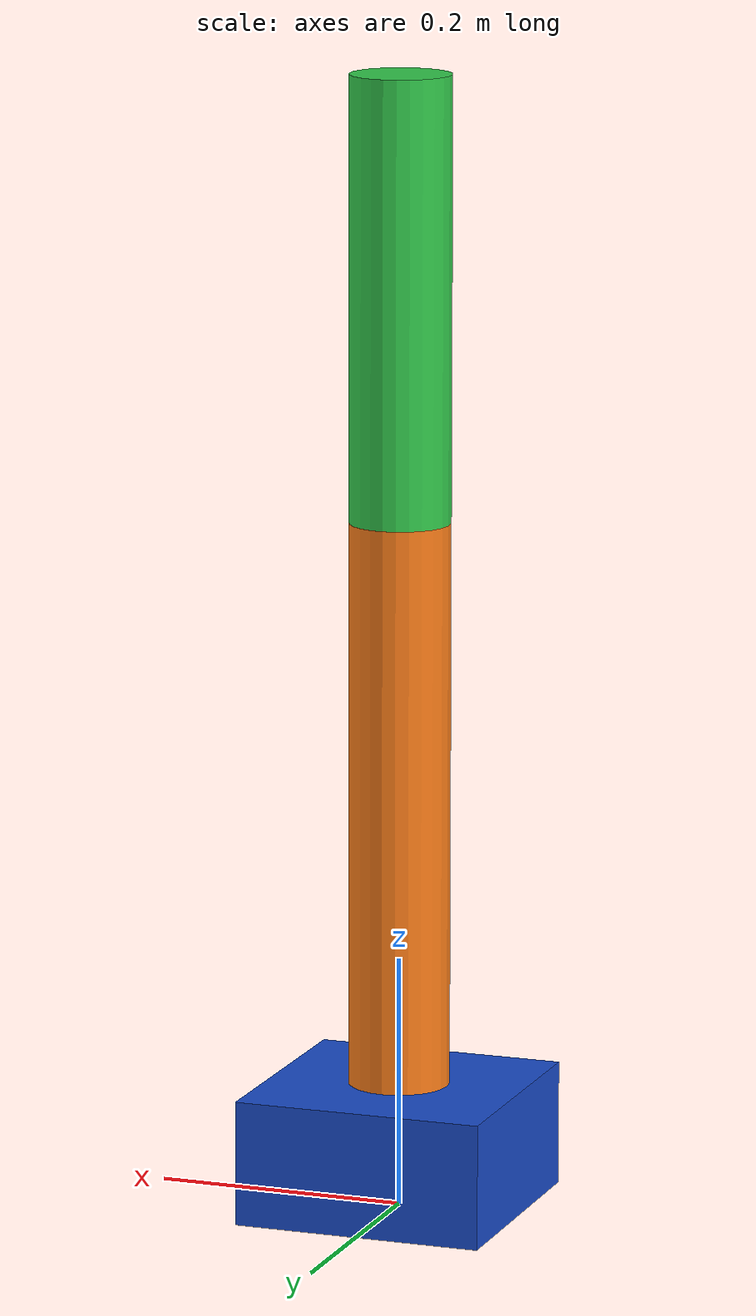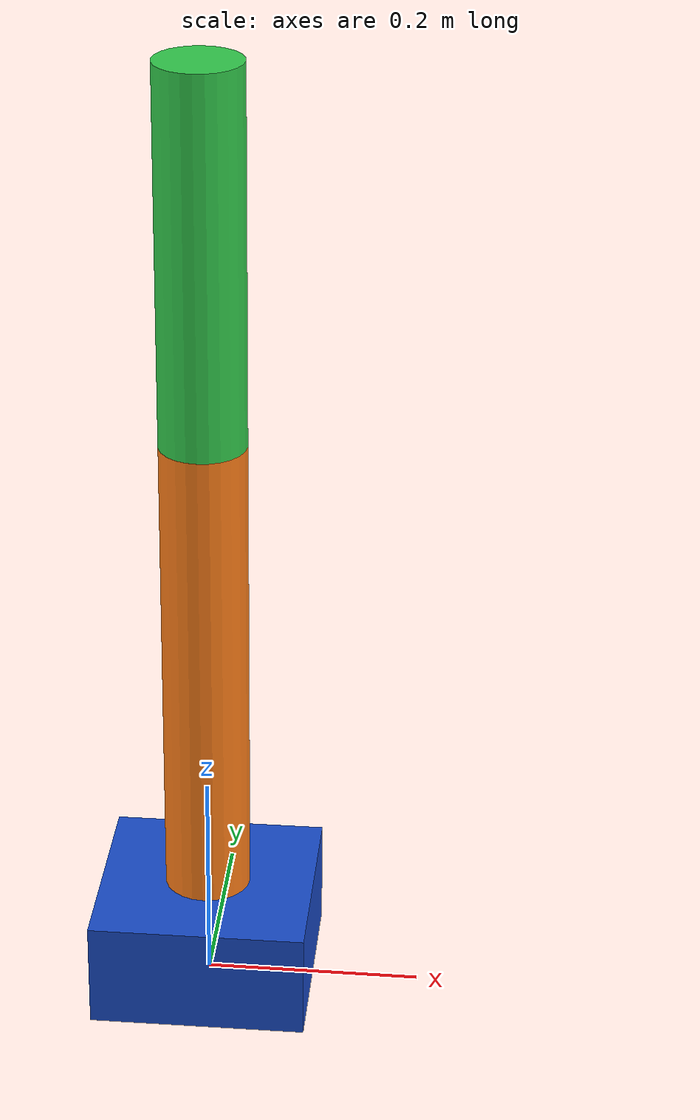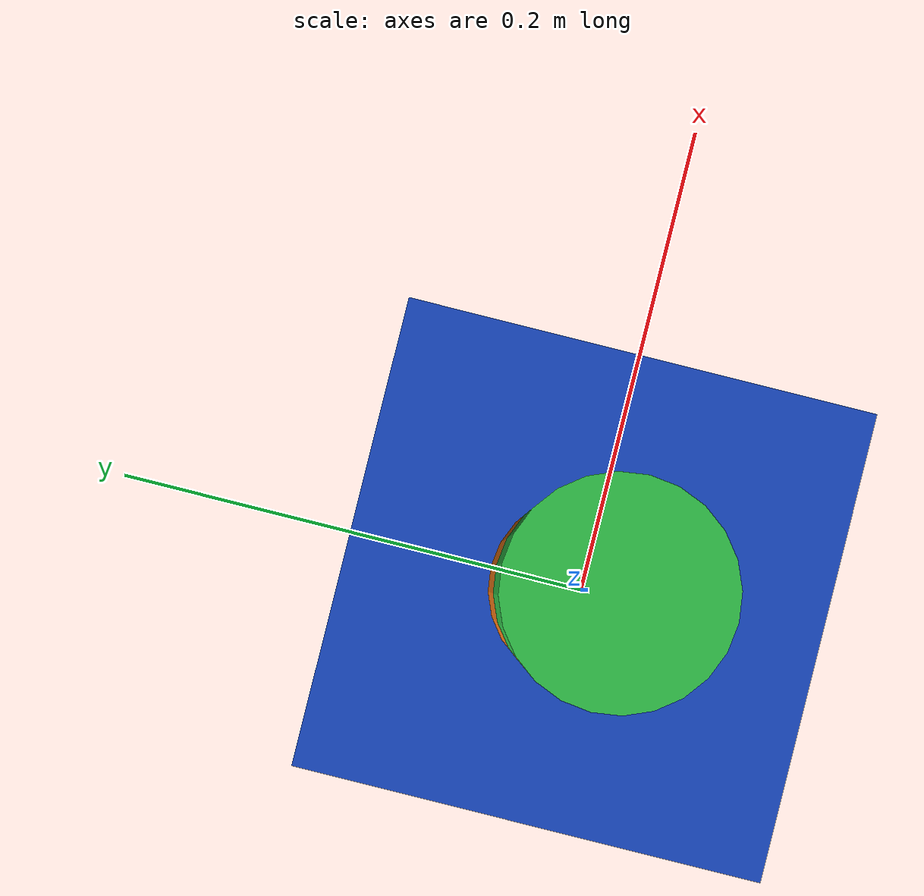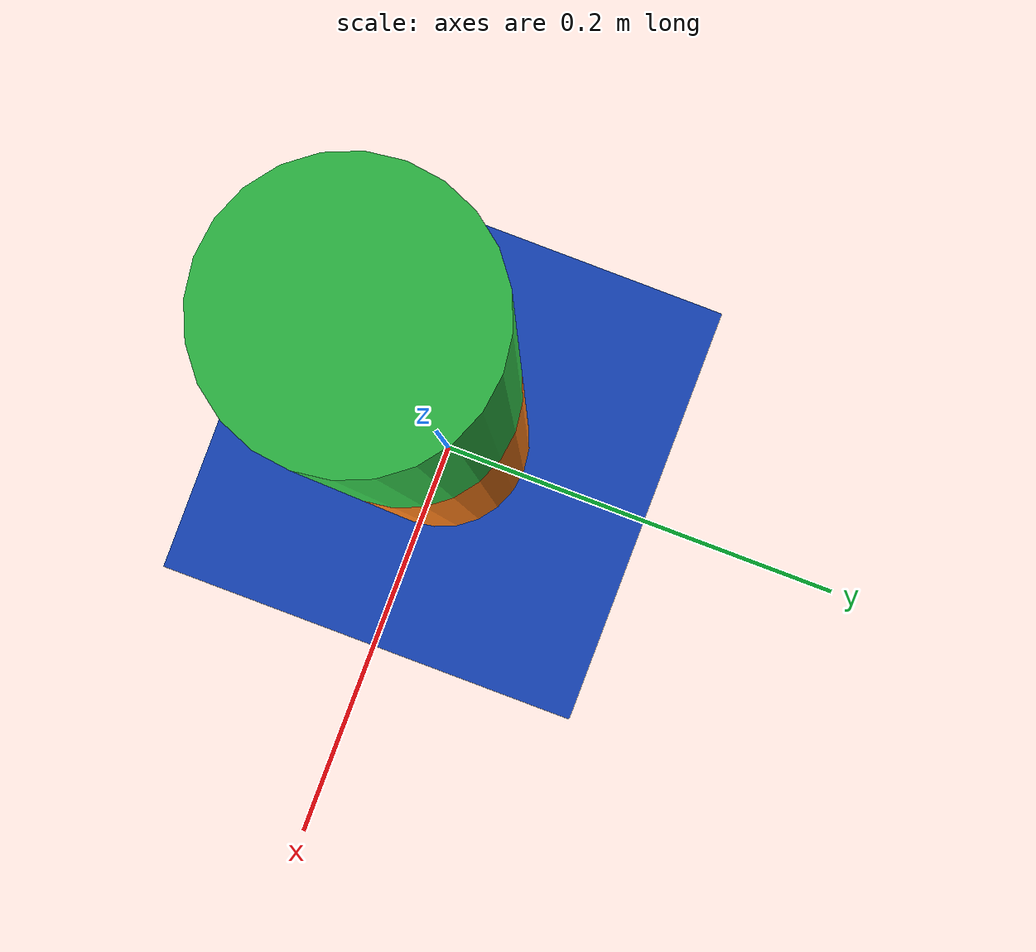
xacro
<?xml version="1.0"?>
<robot name="2dof_arm" xmlns:xacro="http://www.ros.org/wiki/xacro">

  <!-- Basic dimensions -->
  <xacro:property name="base_x" value="0.20"/>
  <xacro:property name="base_y" value="0.20"/>
  <xacro:property name="base_z" value="0.10"/>

  <xacro:property name="link1_length" value="0.45"/>
  <xacro:property name="link2_length" value="0.35"/>
  <xacro:property name="link_radius" value="0.04"/>

  <!-- masses -->
  <xacro:property name="base_mass" value="2.0"/>
  <xacro:property name="link1_mass" value="0.5"/>
  <xacro:property name="link2_mass" value="0.4"/>

  <!-- Base link -->
  <link name="base_link">
    <visual>
      <origin xyz="0 0 ${base_z/2.0}" rpy="0 0 0"/>
      <geometry>
        <box size="${base_x} ${base_y} ${base_z}"/>
      </geometry>
      <material name="blue">
        <color rgba="0.1 0.3 0.8 1.0"/>
      </material>
    </visual>

    <collision>
      <origin xyz="0 0 ${base_z/2.0}" rpy="0 0 0"/>
      <geometry>
        <box size="${base_x} ${base_y} ${base_z}"/>
      </geometry>
    </collision>

    <inertial>
      <origin xyz="0 0 ${base_z/2.0}" rpy="0 0 0"/>
      <mass value="${base_mass}"/>
      <inertia ixx="0.008333" ixy="0.0" ixz="0.0" iyy="0.008333" iyz="0.0" izz="0.013333"/>
    </inertial>
  </link>

  <!-- Arm link 1 -->
  <link name="link1">
    <visual>
      <origin xyz="0 0 ${link1_length/2.0}" rpy="0 0 0"/>
      <geometry>
        <cylinder radius="${link_radius}" length="${link1_length}"/>
      </geometry>
      <material name="orange">
        <color rgba="1.0 0.5 0.1 1.0"/>
      </material>
    </visual>

    <collision>
      <origin xyz="0 0 ${link1_length/2.0}" rpy="0 0 0"/>
      <geometry>
        <cylinder radius="${link_radius}" length="${link1_length}"/>
      </geometry>
    </collision>

    <inertial>
      <origin xyz="0 0 ${link1_length/2.0}" rpy="0 0 0"/>
      <mass value="${link1_mass}"/>
      <inertia ixx="0.010617" ixy="0.0" ixz="0.0" iyy="0.010617" iyz="0.0" izz="0.000400"/>
    </inertial>
  </link>

  <!-- Arm link 2 -->
  <link name="link2">
    <visual>
      <origin xyz="0 0 ${link2_length/2.0}" rpy="0 0 0"/>
      <geometry>
        <cylinder radius="${link_radius}" length="${link2_length}"/>
      </geometry>
      <material name="green">
        <color rgba="0.2 0.8 0.3 1.0"/>
      </material>
    </visual>

    <collision>
      <origin xyz="0 0 ${link2_length/2.0}" rpy="0 0 0"/>
      <geometry>
        <cylinder radius="${link_radius}" length="${link2_length}"/>
      </geometry>
    </collision>

    <inertial>
      <origin xyz="0 0 ${link2_length/2.0}" rpy="0 0 0"/>
      <mass value="${link2_mass}"/>
      <inertia ixx="0.004227" ixy="0.0" ixz="0.0" iyy="0.004227" iyz="0.0" izz="0.000320"/>
    </inertial>
  </link>

  <!-- Revolute joint -->
  <joint name="joint1" type="revolute">
    <parent link="base_link"/>
    <child link="link1"/>
    <origin xyz="0 0 0.1" rpy="0 0 0"/>
    <axis xyz="0 1 0"/>
    <limit lower="-1.57" upper="1.57" effort="20" velocity="1.0"/>
    <dynamics damping="0.2" friction="0.1"/>
  </joint>

  <!-- Revolute joint -->
  <joint name="joint2" type="revolute">
    <parent link="link1"/>
    <child link="link2"/>
    <origin xyz="0 0 ${link1_length}" rpy="0 0 0"/>
    <axis xyz="0 1 0"/>
    <limit lower="-1.57" upper="1.57" effort="20" velocity="1.0"/>
    <dynamics damping="0.2" friction="0.1"/>
  </joint>

</robot>
